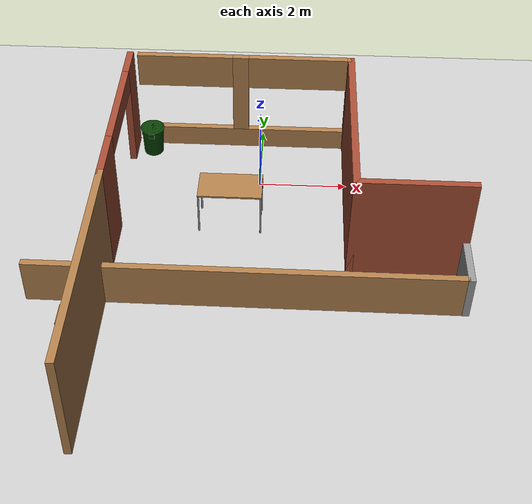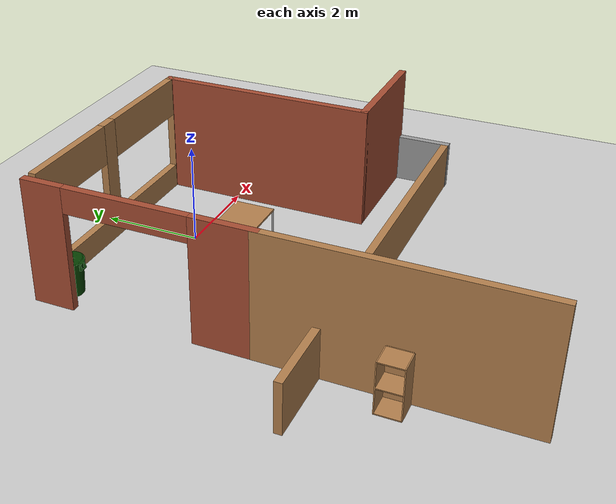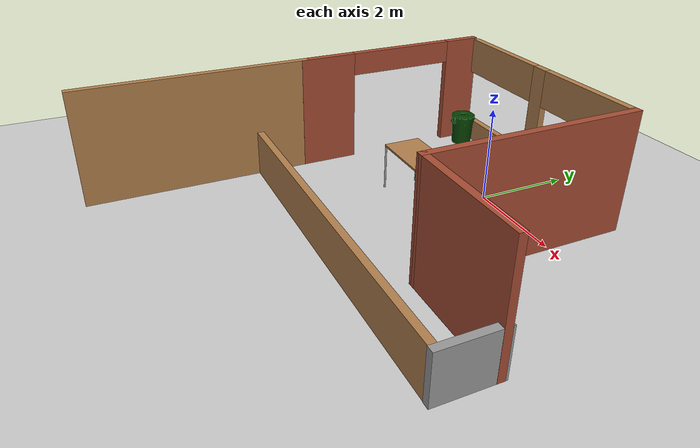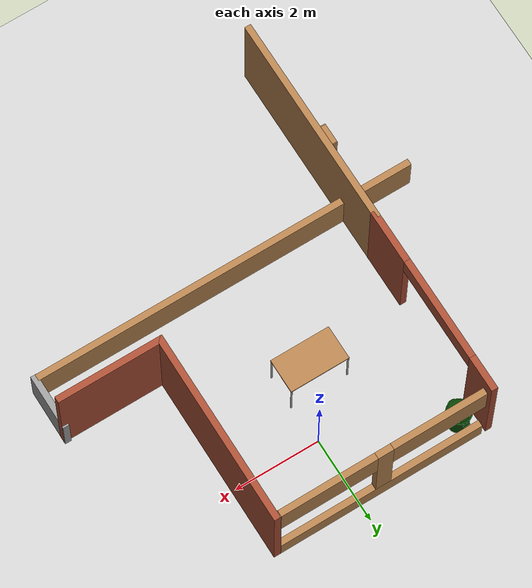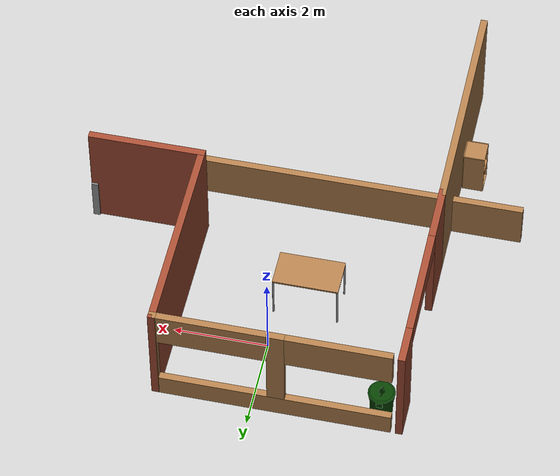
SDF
<sdf version="1.7">
 <world name="default">
  <model name="ground_plane">
   <static>1</static>
   <link name="link">
    <collision name="collision">
     <geometry><plane><normal>0 0 1</normal><size>100 100</size></plane></geometry>
     <surface><friction><ode><mu>100</mu><mu2>50</mu2></ode></friction></surface>
    </collision>
    <visual name="visual">
     <cast_shadows>0</cast_shadows>
     <geometry><plane><normal>0 0 1</normal><size>100 100</size></plane></geometry>
     <material>
      <script><uri>file://media/materials/scripts/gazebo.material</uri><name>Gazebo/Grey</name></script>
     </material>
    </visual>
   </link>
  </model>
  <model name="thesis_exp_tb3_house">
   <link name="Wall_101">
    <pose>-0.05 3.1 0 0 0 -1.5708</pose>
    <visual name="Wall_101_Visual">
     <pose>0 0 1.25 0 -0 0</pose>
     <geometry><box><size>4.5 0.15 2.5</size></box></geometry>
     <material>
      <script><uri>file://media/materials/scripts/gazebo.material</uri><name>Gazebo/Bricks</name></script>
      <ambient>1 1 1 1</ambient>
      <diffuse>1 1 1 1</diffuse>
      <specular>0.2 0.2 0.2 1</specular>
      <emissive>0 0 0 1</emissive>
      <shader type="pixel"/>
     </material>
    </visual>
    <collision name="Wall_101_Collision">
     <pose>0 0 1.25 0 -0 0</pose>
     <geometry><box><size>4.5 0.15 2.5</size></box></geometry>
     <surface>
      <friction>
       <ode><mu>1</mu><mu2>1</mu2><fdir1>0 0 0</fdir1><slip1>0</slip1><slip2>0</slip2></ode>
       <torsional>
        <coefficient>1</coefficient>
        <patch_radius>0</patch_radius>
        <surface_radius>0</surface_radius>
        <use_patch_radius>1</use_patch_radius>
        <ode><slip>0</slip></ode>
       </torsional>
      </friction>
      <bounce><restitution_coefficient>0</restitution_coefficient><threshold>1e+06</threshold></bounce>
      <contact>
       <collide_without_contact>0</collide_without_contact>
       <collide_without_contact_bitmask>1</collide_without_contact_bitmask>
       <collide_bitmask>1</collide_bitmask>
       <ode>
        <soft_cfm>0</soft_cfm>
        <soft_erp>0.2</soft_erp>
        <kp>1e+13</kp>
        <kd>1</kd>
        <max_vel>0.01</max_vel>
        <min_depth>0</min_depth>
       </ode>
       <bullet>
        <split_impulse>1</split_impulse>
        <split_impulse_penetration_threshold>-0.01</split_impulse_penetration_threshold>
        <soft_cfm>0</soft_cfm>
        <soft_erp>0.2</soft_erp>
        <kp>1e+13</kp>
        <kd>1</kd>
       </bullet>
      </contact>
     </surface>
    </collision>
   </link>
   <link name="Wall_108">
    <pose>-1.37512 -0.17488 0 0 -0 0</pose>
    <inertial>
     <mass>1</mass>
     <inertia><ixx>1</ixx><ixy>0</ixy><ixz>0</ixz><iyy>1</iyy><iyz>0</iyz><izz>1</izz></inertia>
    </inertial>
    <visual name="Wall_108_Visual_0">
     <pose>-0.856324 0 0.5 0 -0 0</pose>
     <geometry><box><size>9 0.15 1</size></box></geometry>
     <material>
      <script><uri>file://media/materials/scripts/gazebo.material</uri><name>Gazebo/Wood</name></script>
      <ambient>1 1 1 1</ambient>
      <diffuse>1 1 1 1</diffuse>
      <specular>0.2 0.2 0.2 1</specular>
      <emissive>0 0 0 1</emissive>
      <shader type="pixel"><normal_map>__default__</normal_map></shader>
     </material>
    </visual>
    <collision name="Wall_108_Collision_0">
     <pose>-0.856324 0 0.5 0 -0 0</pose>
     <geometry><box><size>9 0.15 1</size></box></geometry>
     <surface>
      <friction>
       <ode><mu>1</mu><mu2>1</mu2><fdir1>0 0 0</fdir1><slip1>0</slip1><slip2>0</slip2></ode>
       <torsional>
        <coefficient>1</coefficient>
        <patch_radius>0</patch_radius>
        <surface_radius>0</surface_radius>
        <use_patch_radius>1</use_patch_radius>
        <ode><slip>0</slip></ode>
       </torsional>
      </friction>
      <bounce><restitution_coefficient>0</restitution_coefficient><threshold>1e+06</threshold></bounce>
      <contact>
       <collide_without_contact>0</collide_without_contact>
       <collide_without_contact_bitmask>1</collide_without_contact_bitmask>
       <collide_bitmask>1</collide_bitmask>
       <ode>
        <soft_cfm>0</soft_cfm>
        <soft_erp>0.2</soft_erp>
        <kp>1e+13</kp>
        <kd>1</kd>
        <max_vel>0.01</max_vel>
        <min_depth>0</min_depth>
       </ode>
       <bullet>
        <split_impulse>1</split_impulse>
        <split_impulse_penetration_threshold>-0.01</split_impulse_penetration_threshold>
        <soft_cfm>0</soft_cfm>
        <soft_erp>0.2</soft_erp>
        <kp>1e+13</kp>
        <kd>1</kd>
       </bullet>
      </contact>
     </surface>
    </collision>
   </link>
   <link name="Wall_83">
    <pose>-2.475 5.275 0 0 -0 3.14159</pose>
    <visual name="Wall_83_Visual_2">
     <pose>0.110246 0 1.5 0 -0 0</pose>
     <geometry><box><size>0.37052 0.15 2</size></box></geometry>
     <material>
      <script><uri>file://media/materials/scripts/gazebo.material</uri><name>Gazebo/Wood</name></script>
      <ambient>1 1 1 1</ambient>
      <diffuse>1 1 1 1</diffuse>
      <specular>0.2 0.2 0.2 1</specular>
      <emissive>0 0 0 1</emissive>
      <shader type="pixel"/>
     </material>
    </visual>
    <visual name="Wall_83_Visual_1">
     <pose>0.080993 0 0.25 0 -0 0</pose>
     <geometry><box><size>4.83801 0.15 0.5</size></box></geometry>
     <material>
      <script><uri>file://media/materials/scripts/gazebo.material</uri><name>Gazebo/Wood</name></script>
      <ambient>1 1 1 1</ambient>
      <diffuse>1 1 1 1</diffuse>
      <specular>0.2 0.2 0.2 1</specular>
      <emissive>0 0 0 1</emissive>
      <shader type="pixel"/>
     </material>
    </visual>
    <visual name="Wall_83_Visual_4">
     <pose>-1.20651 0 2.1 0 -0 0</pose>
     <geometry><box><size>2.263 0.15 0.8</size></box></geometry>
     <material>
      <script><uri>file://media/materials/scripts/gazebo.material</uri><name>Gazebo/Wood</name></script>
      <ambient>1 1 1 1</ambient>
      <diffuse>1 1 1 1</diffuse>
      <specular>0.2 0.2 0.2 1</specular>
      <emissive>0 0 0 1</emissive>
      <shader type="pixel"/>
     </material>
    </visual>
    <visual name="Wall_83_Visual_3">
     <pose>0.110246 0 1.5 0 -0 0</pose>
     <geometry><box><size>0.37052 0.15 2</size></box></geometry>
     <material>
      <script><uri>file://media/materials/scripts/gazebo.material</uri><name>Gazebo/Wood</name></script>
      <ambient>1 1 1 1</ambient>
      <diffuse>1 1 1 1</diffuse>
      <specular>0.2 0.2 0.2 1</specular>
      <emissive>0 0 0 1</emissive>
      <shader type="pixel"/>
     </material>
    </visual>
    <visual name="Wall_83_Visual_0">
     <pose>-2.41901 0 1.25 0 -0 0</pose>
     <geometry><box><size>0.161986 0.15 2.5</size></box></geometry>
     <material>
      <script><uri>file://media/materials/scripts/gazebo.material</uri><name>Gazebo/Wood</name></script>
      <ambient>1 1 1 1</ambient>
      <diffuse>1 1 1 1</diffuse>
      <specular>0.2 0.2 0.2 1</specular>
      <emissive>0 0 0 1</emissive>
      <shader type="pixel"/>
     </material>
    </visual>
    <visual name="Wall_83_Visual_6">
     <pose>1.39775 0 2.1 0 -0 0</pose>
     <geometry><box><size>2.20449 0.15 0.8</size></box></geometry>
     <material>
      <script><uri>file://media/materials/scripts/gazebo.material</uri><name>Gazebo/Wood</name></script>
      <ambient>1 1 1 1</ambient>
      <diffuse>1 1 1 1</diffuse>
      <specular>0.2 0.2 0.2 1</specular>
      <emissive>0 0 0 1</emissive>
      <shader type="pixel"/>
     </material>
    </visual>
    <visual name="Wall_83_Visual_5">
     <pose>1.39775 0 2.1 0 -0 0</pose>
     <geometry><box><size>2.20449 0.15 0.8</size></box></geometry>
     <material>
      <script><uri>file://media/materials/scripts/gazebo.material</uri><name>Gazebo/Wood</name></script>
      <ambient>1 1 1 1</ambient>
      <diffuse>1 1 1 1</diffuse>
      <specular>0.2 0.2 0.2 1</specular>
      <emissive>0 0 0 1</emissive>
      <shader type="pixel"/>
     </material>
    </visual>
    <collision name="Wall_83_Collision_5">
     <pose>1.39775 0 2.1 0 -0 0</pose>
     <geometry><box><size>2.20449 0.15 0.8</size></box></geometry>
     <surface>
      <friction>
       <ode><mu>1</mu><mu2>1</mu2><fdir1>0 0 0</fdir1><slip1>0</slip1><slip2>0</slip2></ode>
       <torsional>
        <coefficient>1</coefficient>
        <patch_radius>0</patch_radius>
        <surface_radius>0</surface_radius>
        <use_patch_radius>1</use_patch_radius>
        <ode><slip>0</slip></ode>
       </torsional>
      </friction>
      <bounce><restitution_coefficient>0</restitution_coefficient><threshold>1e+06</threshold></bounce>
      <contact>
       <collide_without_contact>0</collide_without_contact>
       <collide_without_contact_bitmask>1</collide_without_contact_bitmask>
       <collide_bitmask>1</collide_bitmask>
       <ode>
        <soft_cfm>0</soft_cfm>
        <soft_erp>0.2</soft_erp>
        <kp>1e+13</kp>
        <kd>1</kd>
        <max_vel>0.01</max_vel>
        <min_depth>0</min_depth>
       </ode>
       <bullet>
        <split_impulse>1</split_impulse>
        <split_impulse_penetration_threshold>-0.01</split_impulse_penetration_threshold>
        <soft_cfm>0</soft_cfm>
        <soft_erp>0.2</soft_erp>
        <kp>1e+13</kp>
        <kd>1</kd>
       </bullet>
      </contact>
     </surface>
    </collision>
    <collision name="Wall_83_Collision_2">
     <pose>0.110246 0 1.5 0 -0 0</pose>
     <geometry><box><size>0.37052 0.15 2</size></box></geometry>
     <surface>
      <friction>
       <ode><mu>1</mu><mu2>1</mu2><fdir1>0 0 0</fdir1><slip1>0</slip1><slip2>0</slip2></ode>
       <torsional>
        <coefficient>1</coefficient>
        <patch_radius>0</patch_radius>
        <surface_radius>0</surface_radius>
        <use_patch_radius>1</use_patch_radius>
        <ode><slip>0</slip></ode>
       </torsional>
      </friction>
      <bounce><restitution_coefficient>0</restitution_coefficient><threshold>1e+06</threshold></bounce>
      <contact>
       <collide_without_contact>0</collide_without_contact>
       <collide_without_contact_bitmask>1</collide_without_contact_bitmask>
       <collide_bitmask>1</collide_bitmask>
       <ode>
        <soft_cfm>0</soft_cfm>
        <soft_erp>0.2</soft_erp>
        <kp>1e+13</kp>
        <kd>1</kd>
        <max_vel>0.01</max_vel>
        <min_depth>0</min_depth>
       </ode>
       <bullet>
        <split_impulse>1</split_impulse>
        <split_impulse_penetration_threshold>-0.01</split_impulse_penetration_threshold>
        <soft_cfm>0</soft_cfm>
        <soft_erp>0.2</soft_erp>
        <kp>1e+13</kp>
        <kd>1</kd>
       </bullet>
      </contact>
     </surface>
    </collision>
    <collision name="Wall_83_Collision_3">
     <pose>0.110246 0 1.5 0 -0 0</pose>
     <geometry><box><size>0.37052 0.15 2</size></box></geometry>
     <surface>
      <friction>
       <ode><mu>1</mu><mu2>1</mu2><fdir1>0 0 0</fdir1><slip1>0</slip1><slip2>0</slip2></ode>
       <torsional>
        <coefficient>1</coefficient>
        <patch_radius>0</patch_radius>
        <surface_radius>0</surface_radius>
        <use_patch_radius>1</use_patch_radius>
        <ode><slip>0</slip></ode>
       </torsional>
      </friction>
      <bounce><restitution_coefficient>0</restitution_coefficient><threshold>1e+06</threshold></bounce>
      <contact>
       <collide_without_contact>0</collide_without_contact>
       <collide_without_contact_bitmask>1</collide_without_contact_bitmask>
       <collide_bitmask>1</collide_bitmask>
       <ode>
        <soft_cfm>0</soft_cfm>
        <soft_erp>0.2</soft_erp>
        <kp>1e+13</kp>
        <kd>1</kd>
        <max_vel>0.01</max_vel>
        <min_depth>0</min_depth>
       </ode>
       <bullet>
        <split_impulse>1</split_impulse>
        <split_impulse_penetration_threshold>-0.01</split_impulse_penetration_threshold>
        <soft_cfm>0</soft_cfm>
        <soft_erp>0.2</soft_erp>
        <kp>1e+13</kp>
        <kd>1</kd>
       </bullet>
      </contact>
     </surface>
    </collision>
    <collision name="Wall_83_Collision_0">
     <pose>-2.41901 0 1.25 0 -0 0</pose>
     <geometry><box><size>0.161986 0.15 2.5</size></box></geometry>
     <surface>
      <friction>
       <ode><mu>1</mu><mu2>1</mu2><fdir1>0 0 0</fdir1><slip1>0</slip1><slip2>0</slip2></ode>
       <torsional>
        <coefficient>1</coefficient>
        <patch_radius>0</patch_radius>
        <surface_radius>0</surface_radius>
        <use_patch_radius>1</use_patch_radius>
        <ode><slip>0</slip></ode>
       </torsional>
      </friction>
      <bounce><restitution_coefficient>0</restitution_coefficient><threshold>1e+06</threshold></bounce>
      <contact>
       <collide_without_contact>0</collide_without_contact>
       <collide_without_contact_bitmask>1</collide_without_contact_bitmask>
       <collide_bitmask>1</collide_bitmask>
       <ode>
        <soft_cfm>0</soft_cfm>
        <soft_erp>0.2</soft_erp>
        <kp>1e+13</kp>
        <kd>1</kd>
        <max_vel>0.01</max_vel>
        <min_depth>0</min_depth>
       </ode>
       <bullet>
        <split_impulse>1</split_impulse>
        <split_impulse_penetration_threshold>-0.01</split_impulse_penetration_threshold>
        <soft_cfm>0</soft_cfm>
        <soft_erp>0.2</soft_erp>
        <kp>1e+13</kp>
        <kd>1</kd>
       </bullet>
      </contact>
     </surface>
    </collision>
    <collision name="Wall_83_Collision_6">
     <pose>1.39775 0 2.1 0 -0 0</pose>
     <geometry><box><size>2.20449 0.15 0.8</size></box></geometry>
     <surface>
      <friction>
       <ode><mu>1</mu><mu2>1</mu2><fdir1>0 0 0</fdir1><slip1>0</slip1><slip2>0</slip2></ode>
       <torsional>
        <coefficient>1</coefficient>
        <patch_radius>0</patch_radius>
        <surface_radius>0</surface_radius>
        <use_patch_radius>1</use_patch_radius>
        <ode><slip>0</slip></ode>
       </torsional>
      </friction>
      <bounce><restitution_coefficient>0</restitution_coefficient><threshold>1e+06</threshold></bounce>
      <contact>
       <collide_without_contact>0</collide_without_contact>
       <collide_without_contact_bitmask>1</collide_without_contact_bitmask>
       <collide_bitmask>1</collide_bitmask>
       <ode>
        <soft_cfm>0</soft_cfm>
        <soft_erp>0.2</soft_erp>
        <kp>1e+13</kp>
        <kd>1</kd>
        <max_vel>0.01</max_vel>
        <min_depth>0</min_depth>
       </ode>
       <bullet>
        <split_impulse>1</split_impulse>
        <split_impulse_penetration_threshold>-0.01</split_impulse_penetration_threshold>
        <soft_cfm>0</soft_cfm>
        <soft_erp>0.2</soft_erp>
        <kp>1e+13</kp>
        <kd>1</kd>
       </bullet>
      </contact>
     </surface>
    </collision>
    <collision name="Wall_83_Collision_1">
     <pose>0.080993 0 0.25 0 -0 0</pose>
     <geometry><box><size>4.83801 0.15 0.5</size></box></geometry>
     <surface>
      <friction>
       <ode><mu>1</mu><mu2>1</mu2><fdir1>0 0 0</fdir1><slip1>0</slip1><slip2>0</slip2></ode>
       <torsional>
        <coefficient>1</coefficient>
        <patch_radius>0</patch_radius>
        <surface_radius>0</surface_radius>
        <use_patch_radius>1</use_patch_radius>
        <ode><slip>0</slip></ode>
       </torsional>
      </friction>
      <bounce><restitution_coefficient>0</restitution_coefficient><threshold>1e+06</threshold></bounce>
      <contact>
       <collide_without_contact>0</collide_without_contact>
       <collide_without_contact_bitmask>1</collide_without_contact_bitmask>
       <collide_bitmask>1</collide_bitmask>
       <ode>
        <soft_cfm>0</soft_cfm>
        <soft_erp>0.2</soft_erp>
        <kp>1e+13</kp>
        <kd>1</kd>
        <max_vel>0.01</max_vel>
        <min_depth>0</min_depth>
       </ode>
       <bullet>
        <split_impulse>1</split_impulse>
        <split_impulse_penetration_threshold>-0.01</split_impulse_penetration_threshold>
        <soft_cfm>0</soft_cfm>
        <soft_erp>0.2</soft_erp>
        <kp>1e+13</kp>
        <kd>1</kd>
       </bullet>
      </contact>
     </surface>
    </collision>
    <collision name="Wall_83_Collision_4">
     <pose>-1.20651 0 2.1 0 -0 0</pose>
     <geometry><box><size>2.263 0.15 0.8</size></box></geometry>
     <surface>
      <friction>
       <ode><mu>1</mu><mu2>1</mu2><fdir1>0 0 0</fdir1><slip1>0</slip1><slip2>0</slip2></ode>
       <torsional>
        <coefficient>1</coefficient>
        <patch_radius>0</patch_radius>
        <surface_radius>0</surface_radius>
        <use_patch_radius>1</use_patch_radius>
        <ode><slip>0</slip></ode>
       </torsional>
      </friction>
      <bounce><restitution_coefficient>0</restitution_coefficient><threshold>1e+06</threshold></bounce>
      <contact>
       <collide_without_contact>0</collide_without_contact>
       <collide_without_contact_bitmask>1</collide_without_contact_bitmask>
       <collide_bitmask>1</collide_bitmask>
       <ode>
        <soft_cfm>0</soft_cfm>
        <soft_erp>0.2</soft_erp>
        <kp>1e+13</kp>
        <kd>1</kd>
        <max_vel>0.01</max_vel>
        <min_depth>0</min_depth>
       </ode>
       <bullet>
        <split_impulse>1</split_impulse>
        <split_impulse_penetration_threshold>-0.01</split_impulse_penetration_threshold>
        <soft_cfm>0</soft_cfm>
        <soft_erp>0.2</soft_erp>
        <kp>1e+13</kp>
        <kd>1</kd>
       </bullet>
      </contact>
     </surface>
    </collision>
   </link>
   <link name="Wall_88">
    <pose>-5.15151 -1.49625 0 0 -0 1.5708</pose>
    <visual name="Wall_88_Visual">
     <pose>0 0 1.25 0 -0 0</pose>
     <geometry><box><size>5 0.15 2.5</size></box></geometry>
     <material>
      <script><uri>file://media/materials/scripts/gazebo.material</uri><name>Gazebo/Wood</name></script>
      <ambient>1 1 1 1</ambient>
      <diffuse>1 1 1 1</diffuse>
      <specular>0.2 0.2 0.2 1</specular>
      <emissive>0 0 0 1</emissive>
      <shader type="pixel"/>
     </material>
    </visual>
    <collision name="Wall_88_Collision">
     <pose>0 0 1.25 0 -0 0</pose>
     <geometry><box><size>5 0.15 2.5</size></box></geometry>
     <surface>
      <friction>
       <ode><mu>1</mu><mu2>1</mu2><fdir1>0 0 0</fdir1><slip1>0</slip1><slip2>0</slip2></ode>
       <torsional>
        <coefficient>1</coefficient>
        <patch_radius>0</patch_radius>
        <surface_radius>0</surface_radius>
        <use_patch_radius>1</use_patch_radius>
        <ode><slip>0</slip></ode>
       </torsional>
      </friction>
      <bounce><restitution_coefficient>0</restitution_coefficient><threshold>1e+06</threshold></bounce>
      <contact>
       <collide_without_contact>0</collide_without_contact>
       <collide_without_contact_bitmask>1</collide_without_contact_bitmask>
       <collide_bitmask>1</collide_bitmask>
       <ode>
        <soft_cfm>0</soft_cfm>
        <soft_erp>0.2</soft_erp>
        <kp>1e+13</kp>
        <kd>1</kd>
        <max_vel>0.01</max_vel>
        <min_depth>0</min_depth>
       </ode>
       <bullet>
        <split_impulse>1</split_impulse>
        <split_impulse_penetration_threshold>-0.01</split_impulse_penetration_threshold>
        <soft_cfm>0</soft_cfm>
        <soft_erp>0.2</soft_erp>
        <kp>1e+13</kp>
        <kd>1</kd>
       </bullet>
      </contact>
     </surface>
    </collision>
   </link>
   <link name="Wall_90">
    <pose>1.125 0.925 0 0 -0 0</pose>
    <visual name="Wall_90_Visual">
     <pose>0 0 1.25 0 -0 0</pose>
     <geometry><box><size>2.5 0.15 2.5</size></box></geometry>
     <material>
      <script><uri>file://media/materials/scripts/gazebo.material</uri><name>Gazebo/Bricks</name></script>
      <ambient>1 1 1 1</ambient>
      <diffuse>1 1 1 1</diffuse>
      <specular>0.2 0.2 0.2 1</specular>
      <emissive>0 0 0 1</emissive>
      <shader type="pixel"/>
     </material>
    </visual>
    <collision name="Wall_90_Collision">
     <pose>0 0 1.25 0 -0 0</pose>
     <geometry><box><size>2.5 0.15 2.5</size></box></geometry>
     <surface>
      <friction>
       <ode><mu>1</mu><mu2>1</mu2><fdir1>0 0 0</fdir1><slip1>0</slip1><slip2>0</slip2></ode>
       <torsional>
        <coefficient>1</coefficient>
        <patch_radius>0</patch_radius>
        <surface_radius>0</surface_radius>
        <use_patch_radius>1</use_patch_radius>
        <ode><slip>0</slip></ode>
       </torsional>
      </friction>
      <bounce><restitution_coefficient>0</restitution_coefficient><threshold>1e+06</threshold></bounce>
      <contact>
       <collide_without_contact>0</collide_without_contact>
       <collide_without_contact_bitmask>1</collide_without_contact_bitmask>
       <collide_bitmask>1</collide_bitmask>
       <ode>
        <soft_cfm>0</soft_cfm>
        <soft_erp>0.2</soft_erp>
        <kp>1e+13</kp>
        <kd>1</kd>
        <max_vel>0.01</max_vel>
        <min_depth>0</min_depth>
       </ode>
       <bullet>
        <split_impulse>1</split_impulse>
        <split_impulse_penetration_threshold>-0.01</split_impulse_penetration_threshold>
        <soft_cfm>0</soft_cfm>
        <soft_erp>0.2</soft_erp>
        <kp>1e+13</kp>
        <kd>1</kd>
       </bullet>
      </contact>
     </surface>
    </collision>
   </link>
   <link name="Wall_99">
    <pose>-5.15 3.1 0 0 -0 1.5708</pose>
    <visual name="Wall_99_Visual_1">
     <pose>1.83695 0 1.25 0 -0 0</pose>
     <geometry><box><size>0.826108 0.15 2.5</size></box></geometry>
     <material>
      <script><uri>file://media/materials/scripts/gazebo.material</uri><name>Gazebo/Bricks</name></script>
      <ambient>1 1 1 1</ambient>
      <diffuse>1 1 1 1</diffuse>
      <specular>0.2 0.2 0.2 1</specular>
      <emissive>0 0 0 1</emissive>
      <shader type="pixel"/>
     </material>
    </visual>
    <visual name="Wall_99_Visual_0">
     <pose>-1.62116 0 1.25 0 -0 0</pose>
     <geometry><box><size>1.25768 0.15 2.5</size></box></geometry>
     <material>
      <script><uri>file://media/materials/scripts/gazebo.material</uri><name>Gazebo/Bricks</name></script>
      <ambient>1 1 1 1</ambient>
      <diffuse>1 1 1 1</diffuse>
      <specular>0.2 0.2 0.2 1</specular>
      <emissive>0 0 0 1</emissive>
      <shader type="pixel"/>
     </material>
    </visual>
    <visual name="Wall_99_Visual_2">
     <pose>0.215786 0 2.25 0 -0 0</pose>
     <geometry><box><size>2.41621 0.15 0.5</size></box></geometry>
     <material>
      <script><uri>file://media/materials/scripts/gazebo.material</uri><name>Gazebo/Bricks</name></script>
      <ambient>1 1 1 1</ambient>
      <diffuse>1 1 1 1</diffuse>
      <specular>0.2 0.2 0.2 1</specular>
      <emissive>0 0 0 1</emissive>
      <shader type="pixel"/>
     </material>
    </visual>
    <collision name="Wall_99_Collision_2">
     <pose>0.215786 0 2.25 0 -0 0</pose>
     <geometry><box><size>2.41621 0.15 0.5</size></box></geometry>
     <surface>
      <friction>
       <ode><mu>1</mu><mu2>1</mu2><fdir1>0 0 0</fdir1><slip1>0</slip1><slip2>0</slip2></ode>
       <torsional>
        <coefficient>1</coefficient>
        <patch_radius>0</patch_radius>
        <surface_radius>0</surface_radius>
        <use_patch_radius>1</use_patch_radius>
        <ode><slip>0</slip></ode>
       </torsional>
      </friction>
      <bounce><restitution_coefficient>0</restitution_coefficient><threshold>1e+06</threshold></bounce>
      <contact>
       <collide_without_contact>0</collide_without_contact>
       <collide_without_contact_bitmask>1</collide_without_contact_bitmask>
       <collide_bitmask>1</collide_bitmask>
       <ode>
        <soft_cfm>0</soft_cfm>
        <soft_erp>0.2</soft_erp>
        <kp>1e+13</kp>
        <kd>1</kd>
        <max_vel>0.01</max_vel>
        <min_depth>0</min_depth>
       </ode>
       <bullet>
        <split_impulse>1</split_impulse>
        <split_impulse_penetration_threshold>-0.01</split_impulse_penetration_threshold>
        <soft_cfm>0</soft_cfm>
        <soft_erp>0.2</soft_erp>
        <kp>1e+13</kp>
        <kd>1</kd>
       </bullet>
      </contact>
     </surface>
    </collision>
    <collision name="Wall_99_Collision_0">
     <pose>-1.62116 0 1.25 0 -0 0</pose>
     <geometry><box><size>1.25768 0.15 2.5</size></box></geometry>
     <surface>
      <friction>
       <ode><mu>1</mu><mu2>1</mu2><fdir1>0 0 0</fdir1><slip1>0</slip1><slip2>0</slip2></ode>
       <torsional>
        <coefficient>1</coefficient>
        <patch_radius>0</patch_radius>
        <surface_radius>0</surface_radius>
        <use_patch_radius>1</use_patch_radius>
        <ode><slip>0</slip></ode>
       </torsional>
      </friction>
      <bounce><restitution_coefficient>0</restitution_coefficient><threshold>1e+06</threshold></bounce>
      <contact>
       <collide_without_contact>0</collide_without_contact>
       <collide_without_contact_bitmask>1</collide_without_contact_bitmask>
       <collide_bitmask>1</collide_bitmask>
       <ode>
        <soft_cfm>0</soft_cfm>
        <soft_erp>0.2</soft_erp>
        <kp>1e+13</kp>
        <kd>1</kd>
        <max_vel>0.01</max_vel>
        <min_depth>0</min_depth>
       </ode>
       <bullet>
        <split_impulse>1</split_impulse>
        <split_impulse_penetration_threshold>-0.01</split_impulse_penetration_threshold>
        <soft_cfm>0</soft_cfm>
        <soft_erp>0.2</soft_erp>
        <kp>1e+13</kp>
        <kd>1</kd>
       </bullet>
      </contact>
     </surface>
    </collision>
    <collision name="Wall_99_Collision_1">
     <pose>1.83695 0 1.25 0 -0 0</pose>
     <geometry><box><size>0.826108 0.15 2.5</size></box></geometry>
     <surface>
      <friction>
       <ode><mu>1</mu><mu2>1</mu2><fdir1>0 0 0</fdir1><slip1>0</slip1><slip2>0</slip2></ode>
       <torsional>
        <coefficient>1</coefficient>
        <patch_radius>0</patch_radius>
        <surface_radius>0</surface_radius>
        <use_patch_radius>1</use_patch_radius>
        <ode><slip>0</slip></ode>
       </torsional>
      </friction>
      <bounce><restitution_coefficient>0</restitution_coefficient><threshold>1e+06</threshold></bounce>
      <contact>
       <collide_without_contact>0</collide_without_contact>
       <collide_without_contact_bitmask>1</collide_without_contact_bitmask>
       <collide_bitmask>1</collide_bitmask>
       <ode>
        <soft_cfm>0</soft_cfm>
        <soft_erp>0.2</soft_erp>
        <kp>1e+13</kp>
        <kd>1</kd>
        <max_vel>0.01</max_vel>
        <min_depth>0</min_depth>
       </ode>
       <bullet>
        <split_impulse>1</split_impulse>
        <split_impulse_penetration_threshold>-0.01</split_impulse_penetration_threshold>
        <soft_cfm>0</soft_cfm>
        <soft_erp>0.2</soft_erp>
        <kp>1e+13</kp>
        <kd>1</kd>
       </bullet>
      </contact>
     </surface>
    </collision>
   </link>
   <link name="link_1">
    <inertial>
     <mass>0.189487</mass>
     <inertia>
      <ixx>0.0423902</ixx>
      <ixy>0</ixy>
      <ixz>0</ixz>
      <iyy>0.0161273</iyy>
      <iyz>0</iyz>
      <izz>0.0269364</izz>
     </inertia>
    </inertial>
    <pose>2.30005 0.392656 0.5 0 -0 0</pose>
    <visual name="visual">
     <geometry><box><size>0.146037 1.29789 1</size></box></geometry>
     <material>
      <lighting>1</lighting>
      <script><uri>file://media/materials/scripts/gazebo.material</uri><name>Gazebo/Grey</name></script>
      <shader type="pixel"><normal_map>__default__</normal_map></shader>
     </material>
    </visual>
    <collision name="collision">
     <geometry><box><size>0.146037 1.29789 1</size></box></geometry>
     <surface>
      <friction>
       <ode><mu>1</mu><mu2>1</mu2><fdir1>0 0 0</fdir1><slip1>0</slip1><slip2>0</slip2></ode>
       <torsional>
        <coefficient>1</coefficient>
        <patch_radius>0</patch_radius>
        <surface_radius>0</surface_radius>
        <use_patch_radius>1</use_patch_radius>
        <ode><slip>0</slip></ode>
       </torsional>
      </friction>
      <bounce><restitution_coefficient>0</restitution_coefficient><threshold>1e+06</threshold></bounce>
      <contact>
       <collide_without_contact>0</collide_without_contact>
       <collide_without_contact_bitmask>1</collide_without_contact_bitmask>
       <collide_bitmask>1</collide_bitmask>
       <ode>
        <soft_cfm>0</soft_cfm>
        <soft_erp>0.2</soft_erp>
        <kp>1e+13</kp>
        <kd>1</kd>
        <max_vel>0.01</max_vel>
        <min_depth>0</min_depth>
       </ode>
       <bullet>
        <split_impulse>1</split_impulse>
        <split_impulse_penetration_threshold>-0.01</split_impulse_penetration_threshold>
        <soft_cfm>0</soft_cfm>
        <soft_erp>0.2</soft_erp>
        <kp>1e+13</kp>
        <kd>1</kd>
       </bullet>
      </contact>
     </surface>
    </collision>
   </link>
   <model name="cabinet">
    <static>1</static>
    <link name="cabinet_bottom_plate">
     <inertial>
      <pose>0 0 -1 0 -0 0</pose>
      <inertia><ixx>2.05</ixx><ixy>0</ixy><ixz>0</ixz><iyy>2.05</iyy><iyz>0</iyz><izz>2.05</izz></inertia>
      <mass>25</mass>
     </inertial>
     <collision name="cabinet_bottom_plate_geom">
      <pose>0 0 0.01 0 -0 0</pose>
      <geometry><box><size>0.45 0.45 0.02</size></box></geometry>
     </collision>
     <visual name="cabinet_bottom_plate_geom_visual">
      <pose>0 0 0.01 0 -0 0</pose>
      <geometry><box><size>0.45 0.45 0.02</size></box></geometry>
      <material>
       <script><uri>file://media/materials/scripts/gazebo.material</uri><name>Gazebo/Wood</name></script>
      </material>
     </visual>
     <collision name="cabinet_bottom_plate_geom_cabinet_back_plate">
      <pose>0.235 0 0.51 0 -0 0</pose>
      <geometry><box><size>0.02 0.45 1.02</size></box></geometry>
     </collision>
     <visual name="cabinet_bottom_plate_geom_cabinet_back_plate_visual">
      <pose>0.235 0 0.51 0 -0 0</pose>
      <geometry><box><size>0.02 0.45 1.02</size></box></geometry>
      <material>
       <script><uri>file://media/materials/scripts/gazebo.material</uri><name>Gazebo/Wood</name></script>
      </material>
     </visual>
     <collision name="cabinet_bottom_plate_geom_cabinet_left_plate">
      <pose>0 0.235 0.51 0 -0 0</pose>
      <geometry><box><size>0.45 0.02 1.02</size></box></geometry>
     </collision>
     <visual name="cabinet_bottom_plate_geom_cabinet_left_plate_visual">
      <pose>0 0.235 0.51 0 -0 0</pose>
      <geometry><box><size>0.45 0.02 1.02</size></box></geometry>
      <material>
       <script><uri>file://media/materials/scripts/gazebo.material</uri><name>Gazebo/Wood</name></script>
      </material>
     </visual>
     <collision name="cabinet_bottom_plate_geom_cabinet_middle_plate">
      <pose>0 0 0.51 0 -0 0</pose>
      <geometry><box><size>0.45 0.45 0.02</size></box></geometry>
     </collision>
     <visual name="cabinet_bottom_plate_geom_cabinet_middle_plate_visual">
      <pose>0 0 0.51 0 -0 0</pose>
      <geometry><box><size>0.45 0.45 0.02</size></box></geometry>
      <material>
       <script><uri>file://media/materials/scripts/gazebo.material</uri><name>Gazebo/Wood</name></script>
      </material>
     </visual>
     <collision name="cabinet_bottom_plate_geom_cabinet_right_plate">
      <pose>0 -0.235 0.51 0 -0 0</pose>
      <geometry><box><size>0.45 0.02 1.02</size></box></geometry>
     </collision>
     <visual name="cabinet_bottom_plate_geom_cabinet_right_plate_visual">
      <pose>0 -0.235 0.51 0 -0 0</pose>
      <geometry><box><size>0.45 0.02 1.02</size></box></geometry>
      <material>
       <script><uri>file://media/materials/scripts/gazebo.material</uri><name>Gazebo/Wood</name></script>
      </material>
     </visual>
     <collision name="cabinet_bottom_plate_geom_cabinet_top_plate">
      <pose>0 0 1.01 0 -0 0</pose>
      <geometry><box><size>0.45 0.45 0.02</size></box></geometry>
     </collision>
     <visual name="cabinet_bottom_plate_geom_cabinet_top_plate_visual">
      <pose>0 0 1.01 0 -0 0</pose>
      <geometry><box><size>0.45 0.45 0.02</size></box></geometry>
      <material>
       <script><uri>file://media/materials/scripts/gazebo.material</uri><name>Gazebo/Wood</name></script>
      </material>
     </visual>
    </link>
    <pose>-5.472 -1.57624 0 0 -0 0</pose>
   </model>
   <model name="first_2015_trash_can_0">
    <link name="link">
     <inertial>
      <pose>0 0 0.3683 0 -0 0</pose>
      <mass>4.83076</mass>
      <inertia>
       <ixx>0.281534</ixx>
       <ixy>0</ixy>
       <ixz>0</ixz>
       <iyy>0.281534</iyy>
       <iyz>0</iyz>
       <izz>0.126223</izz>
      </inertia>
     </inertial>
     <visual name="visual">
      <geometry><mesh><uri>model://first_2015_trash_can/meshes/trash_can.dae</uri></mesh></geometry>
     </visual>
     <collision name="collision">
      <geometry><mesh><uri>model://first_2015_trash_can/meshes/trash_can.dae</uri></mesh></geometry>
     </collision>
    </link>
    <pose>-4.69354 4.89439 0 0 -0 0</pose>
   </model>
   <model name="table">
    <static>0</static>
    <link name="link">
     <collision name="surface">
      <pose>0 0 1 0 -0 0</pose>
      <geometry><box><size>1.5 0.8 0.03</size></box></geometry>
      <surface><friction><ode><mu>0.6</mu><mu2>0.6</mu2></ode></friction></surface>
     </collision>
     <visual name="visual1">
      <pose>0 0 1 0 -0 0</pose>
      <geometry><box><size>1.4 0.8 0.04</size></box></geometry>
      <material>
       <script><uri>file://media/materials/scripts/gazebo.material</uri><name>Gazebo/Wood</name></script>
      </material>
     </visual>
     <collision name="front_left_leg">
      <pose>0.68 0.38 0.5 0 -0 0</pose>
      <geometry><cylinder><radius>0.02</radius><length>1</length></cylinder></geometry>
     </collision>
     <visual name="front_left_leg">
      <pose>0.68 0.38 0.5 0 -0 0</pose>
      <geometry><cylinder><radius>0.02</radius><length>1</length></cylinder></geometry>
      <material>
       <script><uri>file://media/materials/scripts/gazebo.material</uri><name>Gazebo/Grey</name></script>
      </material>
     </visual>
     <collision name="front_right_leg">
      <pose>0.68 -0.38 0.5 0 -0 0</pose>
      <geometry><cylinder><radius>0.02</radius><length>1</length></cylinder></geometry>
     </collision>
     <visual name="front_right_leg">
      <pose>0.68 -0.38 0.5 0 -0 0</pose>
      <geometry><cylinder><radius>0.02</radius><length>1</length></cylinder></geometry>
      <material>
       <script><uri>file://media/materials/scripts/gazebo.material</uri><name>Gazebo/Grey</name></script>
      </material>
     </visual>
     <collision name="back_right_leg">
      <pose>-0.68 -0.38 0.5 0 -0 0</pose>
      <geometry><cylinder><radius>0.02</radius><length>1</length></cylinder></geometry>
     </collision>
     <visual name="back_right_leg">
      <pose>-0.68 -0.38 0.5 0 -0 0</pose>
      <geometry><cylinder><radius>0.02</radius><length>1</length></cylinder></geometry>
      <material>
       <script><uri>file://media/materials/scripts/gazebo.material</uri><name>Gazebo/Grey</name></script>
      </material>
     </visual>
     <collision name="back_left_leg">
      <pose>-0.68 0.38 0.5 0 -0 0</pose>
      <geometry><cylinder><radius>0.02</radius><length>1</length></cylinder></geometry>
     </collision>
     <visual name="back_left_leg">
      <pose>-0.68 0.38 0.5 0 -0 0</pose>
      <geometry><cylinder><radius>0.02</radius><length>1</length></cylinder></geometry>
      <material>
       <script><uri>file://media/materials/scripts/gazebo.material</uri><name>Gazebo/Grey</name></script>
      </material>
     </visual>
     <inertial>
      <inertia><ixx>1</ixx><ixy>0</ixy><ixz>0</ixz><iyy>1</iyy><iyz>0</iyz><izz>1</izz></inertia>
      <mass>1</mass>
     </inertial>
    </link>
    <pose>-2.65728 2.42376 0 0 -0 0</pose>
   </model>
   <static>1</static>
   <pose>2.05751 -3.7249 0 0 -0 0</pose>
  </model>
 </world>
</sdf>
